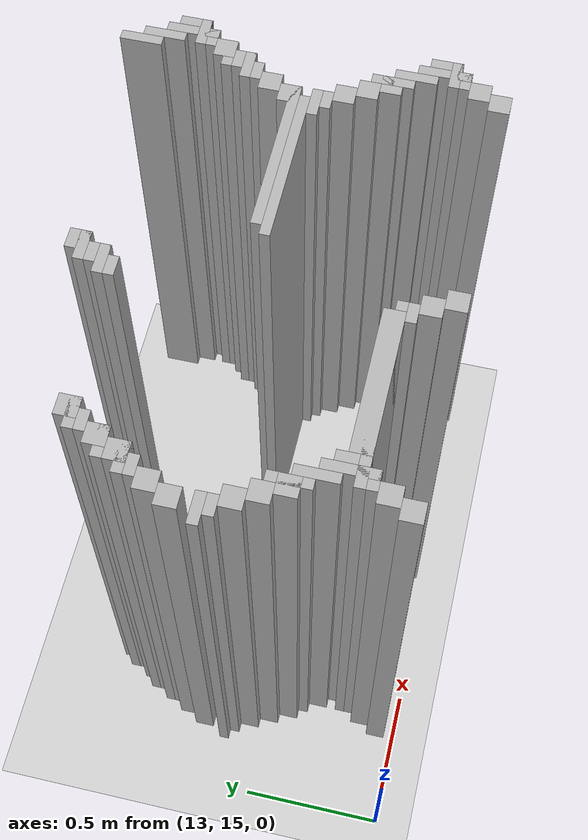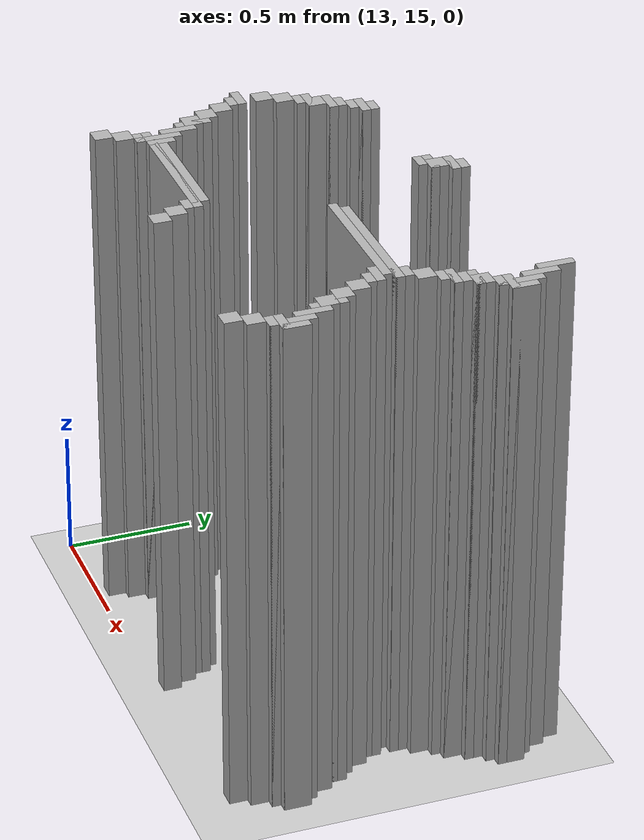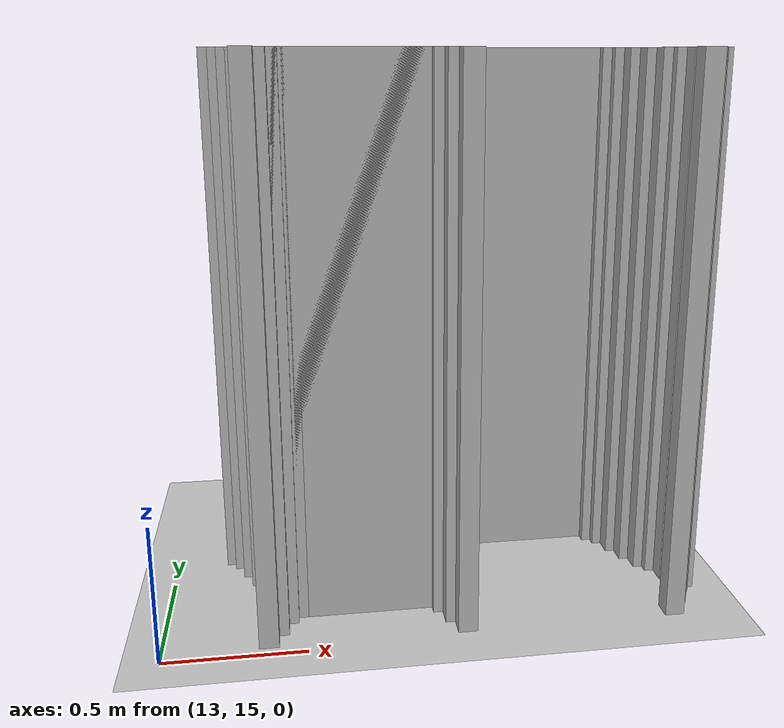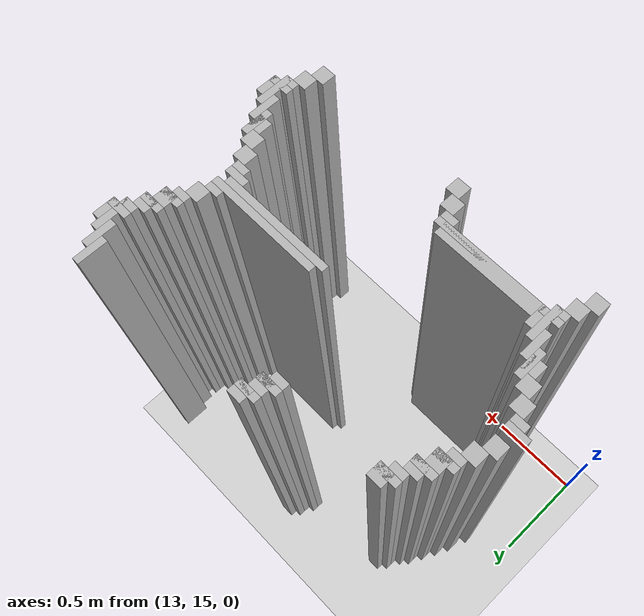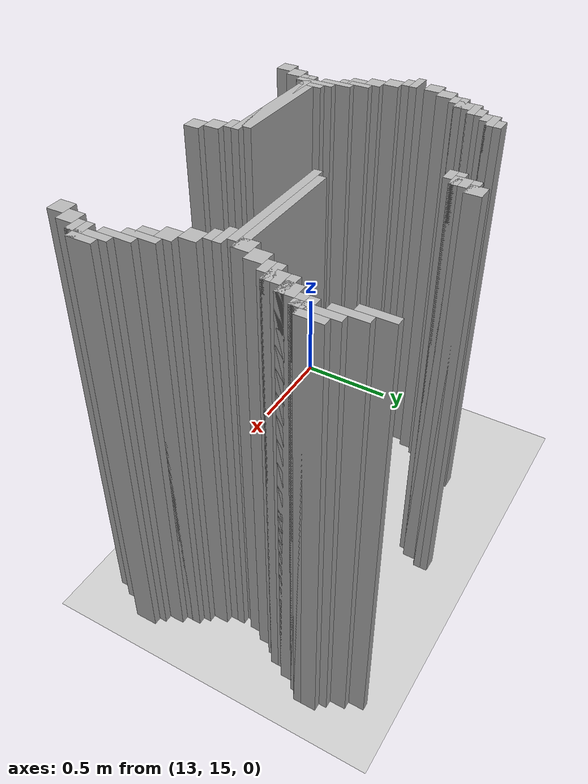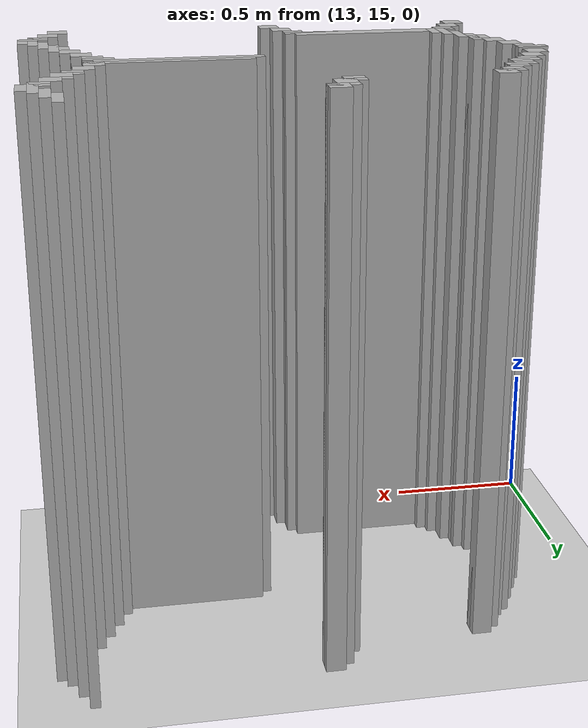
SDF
<sdf version="1.6">
 <world name="slam_world">
  <model name="ground_plane">
   <static>true</static>
   <link name="link">
    <collision name="collision">
     <geometry><plane><normal>0 0 1</normal><size>100 100</size></plane></geometry>
    </collision>
    <visual name="visual">
     <geometry><plane><normal>0 0 1</normal><size>100 100</size></plane></geometry>
     <material>
      <ambient>0.8 0.8 0.8 1</ambient>
      <diffuse>0.8 0.8 0.8 1</diffuse>
      <specular>0.8 0.8 0.8 1</specular>
     </material>
    </visual>
   </link>
  </model>
  <model name="wall_367">
   <static>true</static>
   <pose>14.84338747099768 16.25290023201856 1.0 0 0 0</pose>
   <link name="link">
    <collision name="collision">
     <geometry><box><size>0.03480278422273782 0.13921113689095127 2.0</size></box></geometry>
    </collision>
    <visual name="visual">
     <geometry><box><size>0.03480278422273782 0.13921113689095127 2.0</size></box></geometry>
     <material><ambient>0.5 0.5 0.5 1</ambient><diffuse>0.7 0.7 0.7 1</diffuse></material>
    </visual>
   </link>
  </model>
  <model name="wall_384">
   <static>true</static>
   <pose>14.02552204176334 16.218097447795824 1.0 0 0 0</pose>
   <link name="link">
    <collision name="collision">
     <geometry><box><size>0.06960556844547564 0.06960556844547564 2.0</size></box></geometry>
    </collision>
    <visual name="visual">
     <geometry><box><size>0.06960556844547564 0.06960556844547564 2.0</size></box></geometry>
     <material><ambient>0.5 0.5 0.5 1</ambient><diffuse>0.7 0.7 0.7 1</diffuse></material>
    </visual>
   </link>
  </model>
  <model name="wall_385">
   <static>true</static>
   <pose>14.878190255220417 16.183294663573086 1.0 0 0 0</pose>
   <link name="link">
    <collision name="collision">
     <geometry><box><size>0.03480278422273782 0.13921113689095127 2.0</size></box></geometry>
    </collision>
    <visual name="visual">
     <geometry><box><size>0.03480278422273782 0.13921113689095127 2.0</size></box></geometry>
     <material><ambient>0.5 0.5 0.5 1</ambient><diffuse>0.7 0.7 0.7 1</diffuse></material>
    </visual>
   </link>
  </model>
  <model name="wall_390">
   <static>true</static>
   <pose>14.008120649651971 16.200696055684453 1.0 0 0 0</pose>
   <link name="link">
    <collision name="collision">
     <geometry><box><size>0.10440835266821345 0.03480278422273782 2.0</size></box></geometry>
    </collision>
    <visual name="visual">
     <geometry><box><size>0.10440835266821345 0.03480278422273782 2.0</size></box></geometry>
     <material><ambient>0.5 0.5 0.5 1</ambient><diffuse>0.7 0.7 0.7 1</diffuse></material>
    </visual>
   </link>
  </model>
  <model name="wall_402">
   <static>true</static>
   <pose>13.990719257540603 16.14849187935035 1.0 0 0 0</pose>
   <link name="link">
    <collision name="collision">
     <geometry><box><size>0.06960556844547564 0.06960556844547564 2.0</size></box></geometry>
    </collision>
    <visual name="visual">
     <geometry><box><size>0.06960556844547564 0.06960556844547564 2.0</size></box></geometry>
     <material><ambient>0.5 0.5 0.5 1</ambient><diffuse>0.7 0.7 0.7 1</diffuse></material>
    </visual>
   </link>
  </model>
  <model name="wall_403">
   <static>true</static>
   <pose>14.912993039443155 16.09628770301624 1.0 0 0 0</pose>
   <link name="link">
    <collision name="collision">
     <geometry><box><size>0.03480278422273782 0.17401392111368907 2.0</size></box></geometry>
    </collision>
    <visual name="visual">
     <geometry><box><size>0.03480278422273782 0.17401392111368907 2.0</size></box></geometry>
     <material><ambient>0.5 0.5 0.5 1</ambient><diffuse>0.7 0.7 0.7 1</diffuse></material>
    </visual>
   </link>
  </model>
  <model name="wall_414">
   <static>true</static>
   <pose>13.973317865429234 16.13109048723898 1.0 0 0 0</pose>
   <link name="link">
    <collision name="collision">
     <geometry><box><size>0.10440835266821345 0.03480278422273782 2.0</size></box></geometry>
    </collision>
    <visual name="visual">
     <geometry><box><size>0.10440835266821345 0.03480278422273782 2.0</size></box></geometry>
     <material><ambient>0.5 0.5 0.5 1</ambient><diffuse>0.7 0.7 0.7 1</diffuse></material>
    </visual>
   </link>
  </model>
  <model name="wall_415">
   <static>true</static>
   <pose>14.947795823665892 16.09628770301624 1.0 0 0 0</pose>
   <link name="link">
    <collision name="collision">
     <geometry><box><size>0.03480278422273782 0.10440835266821345 2.0</size></box></geometry>
    </collision>
    <visual name="visual">
     <geometry><box><size>0.03480278422273782 0.10440835266821345 2.0</size></box></geometry>
     <material><ambient>0.5 0.5 0.5 1</ambient><diffuse>0.7 0.7 0.7 1</diffuse></material>
    </visual>
   </link>
  </model>
  <model name="wall_427">
   <static>true</static>
   <pose>13.468677494199536 16.07888631090487 1.0 0 0 0</pose>
   <link name="link">
    <collision name="collision">
     <geometry><box><size>0.06960556844547564 0.06960556844547564 2.0</size></box></geometry>
    </collision>
    <visual name="visual">
     <geometry><box><size>0.06960556844547564 0.06960556844547564 2.0</size></box></geometry>
     <material><ambient>0.5 0.5 0.5 1</ambient><diffuse>0.7 0.7 0.7 1</diffuse></material>
    </visual>
   </link>
  </model>
  <model name="wall_428">
   <static>true</static>
   <pose>13.955916473317865 16.09628770301624 1.0 0 0 0</pose>
   <link name="link">
    <collision name="collision">
     <geometry><box><size>0.06960556844547564 0.03480278422273782 2.0</size></box></geometry>
    </collision>
    <visual name="visual">
     <geometry><box><size>0.06960556844547564 0.03480278422273782 2.0</size></box></geometry>
     <material><ambient>0.5 0.5 0.5 1</ambient><diffuse>0.7 0.7 0.7 1</diffuse></material>
    </visual>
   </link>
  </model>
  <model name="wall_442">
   <static>true</static>
   <pose>13.451276102088167 16.061484918793504 1.0 0 0 0</pose>
   <link name="link">
    <collision name="collision">
     <geometry><box><size>0.10440835266821345 0.03480278422273782 2.0</size></box></geometry>
    </collision>
    <visual name="visual">
     <geometry><box><size>0.10440835266821345 0.03480278422273782 2.0</size></box></geometry>
     <material><ambient>0.5 0.5 0.5 1</ambient><diffuse>0.7 0.7 0.7 1</diffuse></material>
    </visual>
   </link>
  </model>
  <model name="wall_443">
   <static>true</static>
   <pose>14.912993039443155 16.061484918793504 1.0 0 0 0</pose>
   <link name="link">
    <collision name="collision">
     <geometry><box><size>0.10440835266821345 0.03480278422273782 2.0</size></box></geometry>
    </collision>
    <visual name="visual">
     <geometry><box><size>0.10440835266821345 0.03480278422273782 2.0</size></box></geometry>
     <material><ambient>0.5 0.5 0.5 1</ambient><diffuse>0.7 0.7 0.7 1</diffuse></material>
    </visual>
   </link>
  </model>
  <model name="wall_457">
   <static>true</static>
   <pose>13.433874709976797 16.026682134570766 1.0 0 0 0</pose>
   <link name="link">
    <collision name="collision">
     <geometry><box><size>0.06960556844547564 0.03480278422273782 2.0</size></box></geometry>
    </collision>
    <visual name="visual">
     <geometry><box><size>0.06960556844547564 0.03480278422273782 2.0</size></box></geometry>
     <material><ambient>0.5 0.5 0.5 1</ambient><diffuse>0.7 0.7 0.7 1</diffuse></material>
    </visual>
   </link>
  </model>
  <model name="wall_458">
   <static>true</static>
   <pose>14.895591647331786 16.026682134570766 1.0 0 0 0</pose>
   <link name="link">
    <collision name="collision">
     <geometry><box><size>0.06960556844547564 0.03480278422273782 2.0</size></box></geometry>
    </collision>
    <visual name="visual">
     <geometry><box><size>0.06960556844547564 0.03480278422273782 2.0</size></box></geometry>
     <material><ambient>0.5 0.5 0.5 1</ambient><diffuse>0.7 0.7 0.7 1</diffuse></material>
    </visual>
   </link>
  </model>
  <model name="wall_472">
   <static>true</static>
   <pose>13.39907192575406 15.974477958236658 1.0 0 0 0</pose>
   <link name="link">
    <collision name="collision">
     <geometry><box><size>0.06960556844547564 0.06960556844547564 2.0</size></box></geometry>
    </collision>
    <visual name="visual">
     <geometry><box><size>0.06960556844547564 0.06960556844547564 2.0</size></box></geometry>
     <material><ambient>0.5 0.5 0.5 1</ambient><diffuse>0.7 0.7 0.7 1</diffuse></material>
    </visual>
   </link>
  </model>
  <model name="wall_473">
   <static>true</static>
   <pose>14.860788863109049 15.974477958236658 1.0 0 0 0</pose>
   <link name="link">
    <collision name="collision">
     <geometry><box><size>0.06960556844547564 0.06960556844547564 2.0</size></box></geometry>
    </collision>
    <visual name="visual">
     <geometry><box><size>0.06960556844547564 0.06960556844547564 2.0</size></box></geometry>
     <material><ambient>0.5 0.5 0.5 1</ambient><diffuse>0.7 0.7 0.7 1</diffuse></material>
    </visual>
   </link>
  </model>
  <model name="wall_487">
   <static>true</static>
   <pose>13.38167053364269 15.95707656612529 1.0 0 0 0</pose>
   <link name="link">
    <collision name="collision">
     <geometry><box><size>0.10440835266821345 0.03480278422273782 2.0</size></box></geometry>
    </collision>
    <visual name="visual">
     <geometry><box><size>0.10440835266821345 0.03480278422273782 2.0</size></box></geometry>
     <material><ambient>0.5 0.5 0.5 1</ambient><diffuse>0.7 0.7 0.7 1</diffuse></material>
    </visual>
   </link>
  </model>
  <model name="wall_488">
   <static>true</static>
   <pose>14.84338747099768 15.95707656612529 1.0 0 0 0</pose>
   <link name="link">
    <collision name="collision">
     <geometry><box><size>0.10440835266821345 0.03480278422273782 2.0</size></box></geometry>
    </collision>
    <visual name="visual">
     <geometry><box><size>0.10440835266821345 0.03480278422273782 2.0</size></box></geometry>
     <material><ambient>0.5 0.5 0.5 1</ambient><diffuse>0.7 0.7 0.7 1</diffuse></material>
    </visual>
   </link>
  </model>
  <model name="wall_496">
   <static>true</static>
   <pose>13.364269141531322 15.904872389791183 1.0 0 0 0</pose>
   <link name="link">
    <collision name="collision">
     <geometry><box><size>0.06960556844547564 0.06960556844547564 2.0</size></box></geometry>
    </collision>
    <visual name="visual">
     <geometry><box><size>0.06960556844547564 0.06960556844547564 2.0</size></box></geometry>
     <material><ambient>0.5 0.5 0.5 1</ambient><diffuse>0.7 0.7 0.7 1</diffuse></material>
    </visual>
   </link>
  </model>
  <model name="wall_497">
   <static>true</static>
   <pose>14.825986078886311 15.904872389791183 1.0 0 0 0</pose>
   <link name="link">
    <collision name="collision">
     <geometry><box><size>0.06960556844547564 0.06960556844547564 2.0</size></box></geometry>
    </collision>
    <visual name="visual">
     <geometry><box><size>0.06960556844547564 0.06960556844547564 2.0</size></box></geometry>
     <material><ambient>0.5 0.5 0.5 1</ambient><diffuse>0.7 0.7 0.7 1</diffuse></material>
    </visual>
   </link>
  </model>
  <model name="wall_511">
   <static>true</static>
   <pose>13.346867749419953 15.887470997679813 1.0 0 0 0</pose>
   <link name="link">
    <collision name="collision">
     <geometry><box><size>0.10440835266821345 0.03480278422273782 2.0</size></box></geometry>
    </collision>
    <visual name="visual">
     <geometry><box><size>0.10440835266821345 0.03480278422273782 2.0</size></box></geometry>
     <material><ambient>0.5 0.5 0.5 1</ambient><diffuse>0.7 0.7 0.7 1</diffuse></material>
    </visual>
   </link>
  </model>
  <model name="wall_512">
   <static>true</static>
   <pose>14.80858468677494 15.887470997679813 1.0 0 0 0</pose>
   <link name="link">
    <collision name="collision">
     <geometry><box><size>0.10440835266821345 0.03480278422273782 2.0</size></box></geometry>
    </collision>
    <visual name="visual">
     <geometry><box><size>0.10440835266821345 0.03480278422273782 2.0</size></box></geometry>
     <material><ambient>0.5 0.5 0.5 1</ambient><diffuse>0.7 0.7 0.7 1</diffuse></material>
    </visual>
   </link>
  </model>
  <model name="wall_519">
   <static>true</static>
   <pose>13.329466357308585 15.852668213457076 1.0 0 0 0</pose>
   <link name="link">
    <collision name="collision">
     <geometry><box><size>0.06960556844547564 0.03480278422273782 2.0</size></box></geometry>
    </collision>
    <visual name="visual">
     <geometry><box><size>0.06960556844547564 0.03480278422273782 2.0</size></box></geometry>
     <material><ambient>0.5 0.5 0.5 1</ambient><diffuse>0.7 0.7 0.7 1</diffuse></material>
    </visual>
   </link>
  </model>
  <model name="wall_520">
   <static>true</static>
   <pose>14.791183294663572 15.852668213457076 1.0 0 0 0</pose>
   <link name="link">
    <collision name="collision">
     <geometry><box><size>0.06960556844547564 0.03480278422273782 2.0</size></box></geometry>
    </collision>
    <visual name="visual">
     <geometry><box><size>0.06960556844547564 0.03480278422273782 2.0</size></box></geometry>
     <material><ambient>0.5 0.5 0.5 1</ambient><diffuse>0.7 0.7 0.7 1</diffuse></material>
    </visual>
   </link>
  </model>
  <model name="wall_534">
   <static>true</static>
   <pose>13.294663573085847 15.80046403712297 1.0 0 0 0</pose>
   <link name="link">
    <collision name="collision">
     <geometry><box><size>0.06960556844547564 0.06960556844547564 2.0</size></box></geometry>
    </collision>
    <visual name="visual">
     <geometry><box><size>0.06960556844547564 0.06960556844547564 2.0</size></box></geometry>
     <material><ambient>0.5 0.5 0.5 1</ambient><diffuse>0.7 0.7 0.7 1</diffuse></material>
    </visual>
   </link>
  </model>
  <model name="wall_535">
   <static>true</static>
   <pose>14.756380510440835 15.80046403712297 1.0 0 0 0</pose>
   <link name="link">
    <collision name="collision">
     <geometry><box><size>0.06960556844547564 0.06960556844547564 2.0</size></box></geometry>
    </collision>
    <visual name="visual">
     <geometry><box><size>0.06960556844547564 0.06960556844547564 2.0</size></box></geometry>
     <material><ambient>0.5 0.5 0.5 1</ambient><diffuse>0.7 0.7 0.7 1</diffuse></material>
    </visual>
   </link>
  </model>
  <model name="wall_549">
   <static>true</static>
   <pose>13.259860788863108 15.730858468677493 1.0 0 0 0</pose>
   <link name="link">
    <collision name="collision">
     <geometry><box><size>0.06960556844547564 0.06960556844547564 2.0</size></box></geometry>
    </collision>
    <visual name="visual">
     <geometry><box><size>0.06960556844547564 0.06960556844547564 2.0</size></box></geometry>
     <material><ambient>0.5 0.5 0.5 1</ambient><diffuse>0.7 0.7 0.7 1</diffuse></material>
    </visual>
   </link>
  </model>
  <model name="wall_550">
   <static>true</static>
   <pose>14.721577726218097 15.730858468677493 1.0 0 0 0</pose>
   <link name="link">
    <collision name="collision">
     <geometry><box><size>0.06960556844547564 0.06960556844547564 2.0</size></box></geometry>
    </collision>
    <visual name="visual">
     <geometry><box><size>0.06960556844547564 0.06960556844547564 2.0</size></box></geometry>
     <material><ambient>0.5 0.5 0.5 1</ambient><diffuse>0.7 0.7 0.7 1</diffuse></material>
    </visual>
   </link>
  </model>
  <model name="wall_563">
   <static>true</static>
   <pose>14.477958236658932 15.713457076566124 1.0 0 0 0</pose>
   <link name="link">
    <collision name="collision">
     <geometry><box><size>0.5568445475638051 0.03480278422273782 2.0</size></box></geometry>
    </collision>
    <visual name="visual">
     <geometry><box><size>0.5568445475638051 0.03480278422273782 2.0</size></box></geometry>
     <material><ambient>0.5 0.5 0.5 1</ambient><diffuse>0.7 0.7 0.7 1</diffuse></material>
    </visual>
   </link>
  </model>
  <model name="wall_574">
   <static>true</static>
   <pose>14.443155452436194 15.678654292343387 1.0 0 0 0</pose>
   <link name="link">
    <collision name="collision">
     <geometry><box><size>0.5568445475638051 0.03480278422273782 2.0</size></box></geometry>
    </collision>
    <visual name="visual">
     <geometry><box><size>0.5568445475638051 0.03480278422273782 2.0</size></box></geometry>
     <material><ambient>0.5 0.5 0.5 1</ambient><diffuse>0.7 0.7 0.7 1</diffuse></material>
    </visual>
   </link>
  </model>
  <model name="wall_592">
   <static>true</static>
   <pose>13.24245939675174 15.64385150812065 1.0 0 0 0</pose>
   <link name="link">
    <collision name="collision">
     <geometry><box><size>0.10440835266821345 0.03480278422273782 2.0</size></box></geometry>
    </collision>
    <visual name="visual">
     <geometry><box><size>0.10440835266821345 0.03480278422273782 2.0</size></box></geometry>
     <material><ambient>0.5 0.5 0.5 1</ambient><diffuse>0.7 0.7 0.7 1</diffuse></material>
    </visual>
   </link>
  </model>
  <model name="wall_593">
   <static>true</static>
   <pose>14.704176334106728 15.64385150812065 1.0 0 0 0</pose>
   <link name="link">
    <collision name="collision">
     <geometry><box><size>0.10440835266821345 0.03480278422273782 2.0</size></box></geometry>
    </collision>
    <visual name="visual">
     <geometry><box><size>0.10440835266821345 0.03480278422273782 2.0</size></box></geometry>
     <material><ambient>0.5 0.5 0.5 1</ambient><diffuse>0.7 0.7 0.7 1</diffuse></material>
    </visual>
   </link>
  </model>
  <model name="wall_608">
   <static>true</static>
   <pose>13.259860788863108 15.609048723897912 1.0 0 0 0</pose>
   <link name="link">
    <collision name="collision">
     <geometry><box><size>0.06960556844547564 0.03480278422273782 2.0</size></box></geometry>
    </collision>
    <visual name="visual">
     <geometry><box><size>0.06960556844547564 0.03480278422273782 2.0</size></box></geometry>
     <material><ambient>0.5 0.5 0.5 1</ambient><diffuse>0.7 0.7 0.7 1</diffuse></material>
    </visual>
   </link>
  </model>
  <model name="wall_609">
   <static>true</static>
   <pose>14.721577726218097 15.609048723897912 1.0 0 0 0</pose>
   <link name="link">
    <collision name="collision">
     <geometry><box><size>0.06960556844547564 0.03480278422273782 2.0</size></box></geometry>
    </collision>
    <visual name="visual">
     <geometry><box><size>0.06960556844547564 0.03480278422273782 2.0</size></box></geometry>
     <material><ambient>0.5 0.5 0.5 1</ambient><diffuse>0.7 0.7 0.7 1</diffuse></material>
    </visual>
   </link>
  </model>
  <model name="wall_624">
   <static>true</static>
   <pose>13.294663573085847 15.556844547563804 1.0 0 0 0</pose>
   <link name="link">
    <collision name="collision">
     <geometry><box><size>0.06960556844547564 0.06960556844547564 2.0</size></box></geometry>
    </collision>
    <visual name="visual">
     <geometry><box><size>0.06960556844547564 0.06960556844547564 2.0</size></box></geometry>
     <material><ambient>0.5 0.5 0.5 1</ambient><diffuse>0.7 0.7 0.7 1</diffuse></material>
    </visual>
   </link>
  </model>
  <model name="wall_625">
   <static>true</static>
   <pose>14.756380510440835 15.556844547563804 1.0 0 0 0</pose>
   <link name="link">
    <collision name="collision">
     <geometry><box><size>0.06960556844547564 0.06960556844547564 2.0</size></box></geometry>
    </collision>
    <visual name="visual">
     <geometry><box><size>0.06960556844547564 0.06960556844547564 2.0</size></box></geometry>
     <material><ambient>0.5 0.5 0.5 1</ambient><diffuse>0.7 0.7 0.7 1</diffuse></material>
    </visual>
   </link>
  </model>
  <model name="wall_640">
   <static>true</static>
   <pose>13.329466357308585 15.48723897911833 1.0 0 0 0</pose>
   <link name="link">
    <collision name="collision">
     <geometry><box><size>0.06960556844547564 0.06960556844547564 2.0</size></box></geometry>
    </collision>
    <visual name="visual">
     <geometry><box><size>0.06960556844547564 0.06960556844547564 2.0</size></box></geometry>
     <material><ambient>0.5 0.5 0.5 1</ambient><diffuse>0.7 0.7 0.7 1</diffuse></material>
    </visual>
   </link>
  </model>
  <model name="wall_641">
   <static>true</static>
   <pose>14.791183294663572 15.48723897911833 1.0 0 0 0</pose>
   <link name="link">
    <collision name="collision">
     <geometry><box><size>0.06960556844547564 0.06960556844547564 2.0</size></box></geometry>
    </collision>
    <visual name="visual">
     <geometry><box><size>0.06960556844547564 0.06960556844547564 2.0</size></box></geometry>
     <material><ambient>0.5 0.5 0.5 1</ambient><diffuse>0.7 0.7 0.7 1</diffuse></material>
    </visual>
   </link>
  </model>
  <model name="wall_656">
   <static>true</static>
   <pose>13.38167053364269 15.417633410672853 1.0 0 0 0</pose>
   <link name="link">
    <collision name="collision">
     <geometry><box><size>0.03480278422273782 0.13921113689095127 2.0</size></box></geometry>
    </collision>
    <visual name="visual">
     <geometry><box><size>0.03480278422273782 0.13921113689095127 2.0</size></box></geometry>
     <material><ambient>0.5 0.5 0.5 1</ambient><diffuse>0.7 0.7 0.7 1</diffuse></material>
    </visual>
   </link>
  </model>
  <model name="wall_657">
   <static>true</static>
   <pose>14.84338747099768 15.417633410672853 1.0 0 0 0</pose>
   <link name="link">
    <collision name="collision">
     <geometry><box><size>0.03480278422273782 0.13921113689095127 2.0</size></box></geometry>
    </collision>
    <visual name="visual">
     <geometry><box><size>0.03480278422273782 0.13921113689095127 2.0</size></box></geometry>
     <material><ambient>0.5 0.5 0.5 1</ambient><diffuse>0.7 0.7 0.7 1</diffuse></material>
    </visual>
   </link>
  </model>
  <model name="wall_667">
   <static>true</static>
   <pose>13.364269141531322 15.417633410672853 1.0 0 0 0</pose>
   <link name="link">
    <collision name="collision">
     <geometry><box><size>0.06960556844547564 0.06960556844547564 2.0</size></box></geometry>
    </collision>
    <visual name="visual">
     <geometry><box><size>0.06960556844547564 0.06960556844547564 2.0</size></box></geometry>
     <material><ambient>0.5 0.5 0.5 1</ambient><diffuse>0.7 0.7 0.7 1</diffuse></material>
    </visual>
   </link>
  </model>
  <model name="wall_668">
   <static>true</static>
   <pose>14.825986078886311 15.417633410672853 1.0 0 0 0</pose>
   <link name="link">
    <collision name="collision">
     <geometry><box><size>0.06960556844547564 0.06960556844547564 2.0</size></box></geometry>
    </collision>
    <visual name="visual">
     <geometry><box><size>0.06960556844547564 0.06960556844547564 2.0</size></box></geometry>
     <material><ambient>0.5 0.5 0.5 1</ambient><diffuse>0.7 0.7 0.7 1</diffuse></material>
    </visual>
   </link>
  </model>
  <model name="wall_683">
   <static>true</static>
   <pose>13.416473317865428 15.348027842227378 1.0 0 0 0</pose>
   <link name="link">
    <collision name="collision">
     <geometry><box><size>0.03480278422273782 0.13921113689095127 2.0</size></box></geometry>
    </collision>
    <visual name="visual">
     <geometry><box><size>0.03480278422273782 0.13921113689095127 2.0</size></box></geometry>
     <material><ambient>0.5 0.5 0.5 1</ambient><diffuse>0.7 0.7 0.7 1</diffuse></material>
    </visual>
   </link>
  </model>
  <model name="wall_684">
   <static>true</static>
   <pose>14.878190255220417 15.348027842227378 1.0 0 0 0</pose>
   <link name="link">
    <collision name="collision">
     <geometry><box><size>0.03480278422273782 0.13921113689095127 2.0</size></box></geometry>
    </collision>
    <visual name="visual">
     <geometry><box><size>0.03480278422273782 0.13921113689095127 2.0</size></box></geometry>
     <material><ambient>0.5 0.5 0.5 1</ambient><diffuse>0.7 0.7 0.7 1</diffuse></material>
    </visual>
   </link>
  </model>
  <model name="wall_705">
   <static>true</static>
   <pose>13.451276102088167 15.261020881670532 1.0 0 0 0</pose>
   <link name="link">
    <collision name="collision">
     <geometry><box><size>0.03480278422273782 0.17401392111368907 2.0</size></box></geometry>
    </collision>
    <visual name="visual">
     <geometry><box><size>0.03480278422273782 0.17401392111368907 2.0</size></box></geometry>
     <material><ambient>0.5 0.5 0.5 1</ambient><diffuse>0.7 0.7 0.7 1</diffuse></material>
    </visual>
   </link>
  </model>
  <model name="wall_706">
   <static>true</static>
   <pose>14.912993039443155 15.261020881670532 1.0 0 0 0</pose>
   <link name="link">
    <collision name="collision">
     <geometry><box><size>0.03480278422273782 0.17401392111368907 2.0</size></box></geometry>
    </collision>
    <visual name="visual">
     <geometry><box><size>0.03480278422273782 0.17401392111368907 2.0</size></box></geometry>
     <material><ambient>0.5 0.5 0.5 1</ambient><diffuse>0.7 0.7 0.7 1</diffuse></material>
    </visual>
   </link>
  </model>
  <model name="wall_721">
   <static>true</static>
   <pose>13.486078886310905 15.261020881670532 1.0 0 0 0</pose>
   <link name="link">
    <collision name="collision">
     <geometry><box><size>0.03480278422273782 0.10440835266821345 2.0</size></box></geometry>
    </collision>
    <visual name="visual">
     <geometry><box><size>0.03480278422273782 0.10440835266821345 2.0</size></box></geometry>
     <material><ambient>0.5 0.5 0.5 1</ambient><diffuse>0.7 0.7 0.7 1</diffuse></material>
    </visual>
   </link>
  </model>
  <model name="wall_722">
   <static>true</static>
   <pose>14.947795823665892 15.261020881670532 1.0 0 0 0</pose>
   <link name="link">
    <collision name="collision">
     <geometry><box><size>0.03480278422273782 0.10440835266821345 2.0</size></box></geometry>
    </collision>
    <visual name="visual">
     <geometry><box><size>0.03480278422273782 0.10440835266821345 2.0</size></box></geometry>
     <material><ambient>0.5 0.5 0.5 1</ambient><diffuse>0.7 0.7 0.7 1</diffuse></material>
    </visual>
   </link>
  </model>
  <model name="wall_732">
   <static>true</static>
   <pose>13.747099767981437 15.243619489559164 1.0 0 0 0</pose>
   <link name="link">
    <collision name="collision">
     <geometry><box><size>0.4872389791183295 0.06960556844547564 2.0</size></box></geometry>
    </collision>
    <visual name="visual">
     <geometry><box><size>0.4872389791183295 0.06960556844547564 2.0</size></box></geometry>
     <material><ambient>0.5 0.5 0.5 1</ambient><diffuse>0.7 0.7 0.7 1</diffuse></material>
    </visual>
   </link>
  </model>
  <model name="wall_743">
   <static>true</static>
   <pose>13.7122969837587 15.226218097447795 1.0 0 0 0</pose>
   <link name="link">
    <collision name="collision">
     <geometry><box><size>0.6264501160092807 0.03480278422273782 2.0</size></box></geometry>
    </collision>
    <visual name="visual">
     <geometry><box><size>0.6264501160092807 0.03480278422273782 2.0</size></box></geometry>
     <material><ambient>0.5 0.5 0.5 1</ambient><diffuse>0.7 0.7 0.7 1</diffuse></material>
    </visual>
   </link>
  </model>
  <model name="wall_744">
   <static>true</static>
   <pose>14.912993039443155 15.226218097447795 1.0 0 0 0</pose>
   <link name="link">
    <collision name="collision">
     <geometry><box><size>0.10440835266821345 0.03480278422273782 2.0</size></box></geometry>
    </collision>
    <visual name="visual">
     <geometry><box><size>0.10440835266821345 0.03480278422273782 2.0</size></box></geometry>
     <material><ambient>0.5 0.5 0.5 1</ambient><diffuse>0.7 0.7 0.7 1</diffuse></material>
    </visual>
   </link>
  </model>
  <model name="wall_756">
   <static>true</static>
   <pose>13.433874709976797 15.191415313225058 1.0 0 0 0</pose>
   <link name="link">
    <collision name="collision">
     <geometry><box><size>0.06960556844547564 0.03480278422273782 2.0</size></box></geometry>
    </collision>
    <visual name="visual">
     <geometry><box><size>0.06960556844547564 0.03480278422273782 2.0</size></box></geometry>
     <material><ambient>0.5 0.5 0.5 1</ambient><diffuse>0.7 0.7 0.7 1</diffuse></material>
    </visual>
   </link>
  </model>
  <model name="wall_757">
   <static>true</static>
   <pose>13.990719257540603 15.191415313225058 1.0 0 0 0</pose>
   <link name="link">
    <collision name="collision">
     <geometry><box><size>0.06960556844547564 0.03480278422273782 2.0</size></box></geometry>
    </collision>
    <visual name="visual">
     <geometry><box><size>0.06960556844547564 0.03480278422273782 2.0</size></box></geometry>
     <material><ambient>0.5 0.5 0.5 1</ambient><diffuse>0.7 0.7 0.7 1</diffuse></material>
    </visual>
   </link>
  </model>
  <model name="wall_758">
   <static>true</static>
   <pose>14.895591647331786 15.191415313225058 1.0 0 0 0</pose>
   <link name="link">
    <collision name="collision">
     <geometry><box><size>0.06960556844547564 0.03480278422273782 2.0</size></box></geometry>
    </collision>
    <visual name="visual">
     <geometry><box><size>0.06960556844547564 0.03480278422273782 2.0</size></box></geometry>
     <material><ambient>0.5 0.5 0.5 1</ambient><diffuse>0.7 0.7 0.7 1</diffuse></material>
    </visual>
   </link>
  </model>
  <model name="wall_770">
   <static>true</static>
   <pose>13.39907192575406 15.139211136890951 1.0 0 0 0</pose>
   <link name="link">
    <collision name="collision">
     <geometry><box><size>0.06960556844547564 0.06960556844547564 2.0</size></box></geometry>
    </collision>
    <visual name="visual">
     <geometry><box><size>0.06960556844547564 0.06960556844547564 2.0</size></box></geometry>
     <material><ambient>0.5 0.5 0.5 1</ambient><diffuse>0.7 0.7 0.7 1</diffuse></material>
    </visual>
   </link>
  </model>
  <model name="wall_771">
   <static>true</static>
   <pose>14.02552204176334 15.139211136890951 1.0 0 0 0</pose>
   <link name="link">
    <collision name="collision">
     <geometry><box><size>0.06960556844547564 0.06960556844547564 2.0</size></box></geometry>
    </collision>
    <visual name="visual">
     <geometry><box><size>0.06960556844547564 0.06960556844547564 2.0</size></box></geometry>
     <material><ambient>0.5 0.5 0.5 1</ambient><diffuse>0.7 0.7 0.7 1</diffuse></material>
    </visual>
   </link>
  </model>
  <model name="wall_772">
   <static>true</static>
   <pose>14.860788863109049 15.139211136890951 1.0 0 0 0</pose>
   <link name="link">
    <collision name="collision">
     <geometry><box><size>0.06960556844547564 0.06960556844547564 2.0</size></box></geometry>
    </collision>
    <visual name="visual">
     <geometry><box><size>0.06960556844547564 0.06960556844547564 2.0</size></box></geometry>
     <material><ambient>0.5 0.5 0.5 1</ambient><diffuse>0.7 0.7 0.7 1</diffuse></material>
    </visual>
   </link>
  </model>
  <model name="wall_784">
   <static>true</static>
   <pose>13.364269141531322 15.069605568445475 1.0 0 0 0</pose>
   <link name="link">
    <collision name="collision">
     <geometry><box><size>0.06960556844547564 0.06960556844547564 2.0</size></box></geometry>
    </collision>
    <visual name="visual">
     <geometry><box><size>0.06960556844547564 0.06960556844547564 2.0</size></box></geometry>
     <material><ambient>0.5 0.5 0.5 1</ambient><diffuse>0.7 0.7 0.7 1</diffuse></material>
    </visual>
   </link>
  </model>
  <model name="wall_785">
   <static>true</static>
   <pose>14.06032482598608 15.069605568445475 1.0 0 0 0</pose>
   <link name="link">
    <collision name="collision">
     <geometry><box><size>0.06960556844547564 0.06960556844547564 2.0</size></box></geometry>
    </collision>
    <visual name="visual">
     <geometry><box><size>0.06960556844547564 0.06960556844547564 2.0</size></box></geometry>
     <material><ambient>0.5 0.5 0.5 1</ambient><diffuse>0.7 0.7 0.7 1</diffuse></material>
    </visual>
   </link>
  </model>
  <model name="wall_786">
   <static>true</static>
   <pose>14.825986078886311 15.069605568445475 1.0 0 0 0</pose>
   <link name="link">
    <collision name="collision">
     <geometry><box><size>0.06960556844547564 0.06960556844547564 2.0</size></box></geometry>
    </collision>
    <visual name="visual">
     <geometry><box><size>0.06960556844547564 0.06960556844547564 2.0</size></box></geometry>
     <material><ambient>0.5 0.5 0.5 1</ambient><diffuse>0.7 0.7 0.7 1</diffuse></material>
    </visual>
   </link>
  </model>
 </world>
</sdf>
